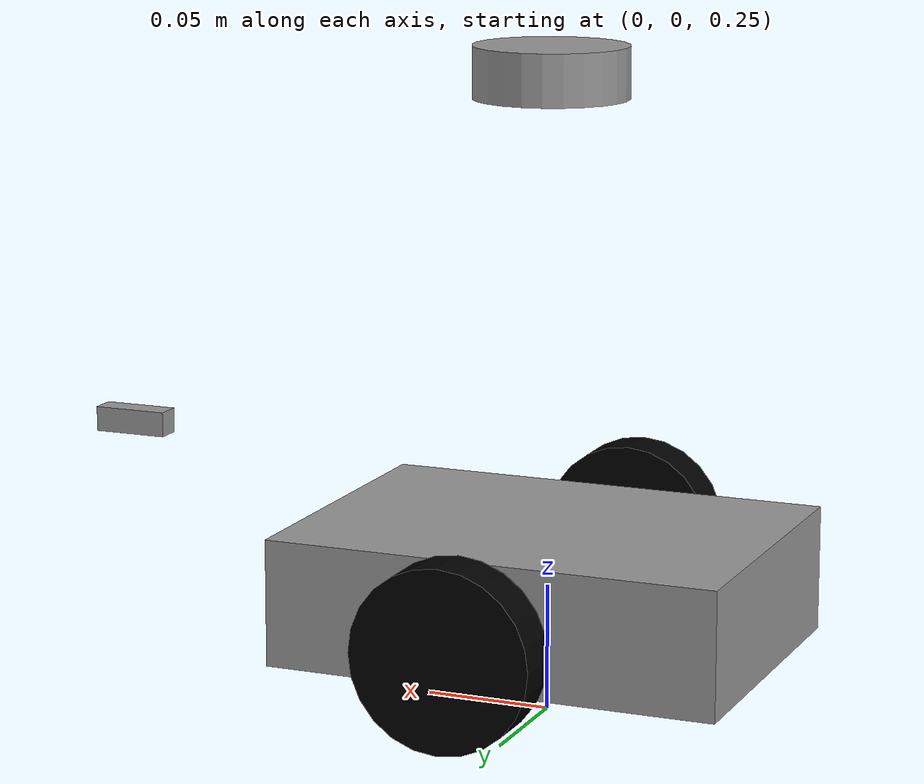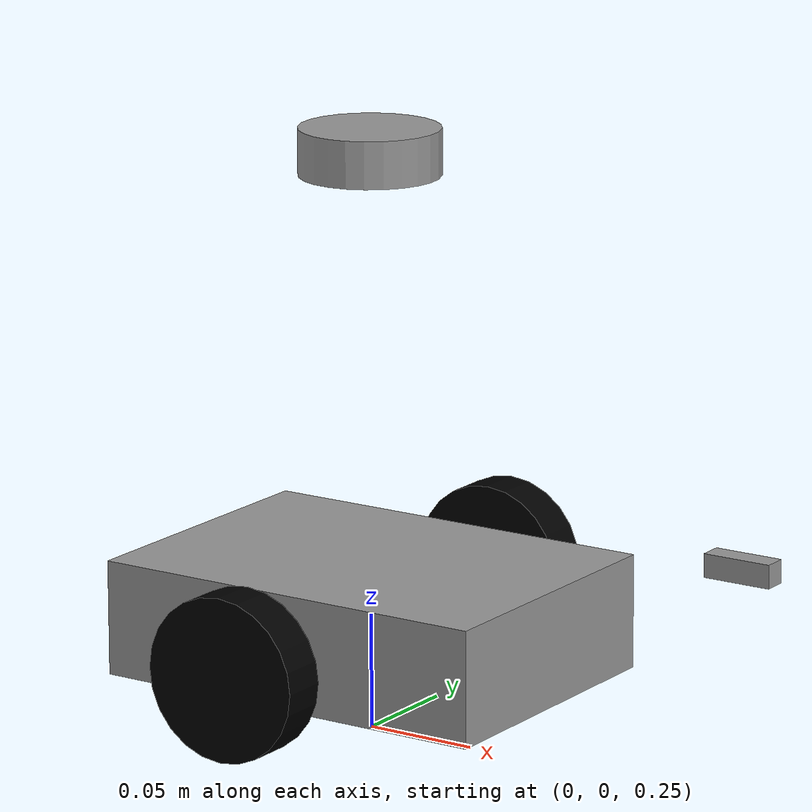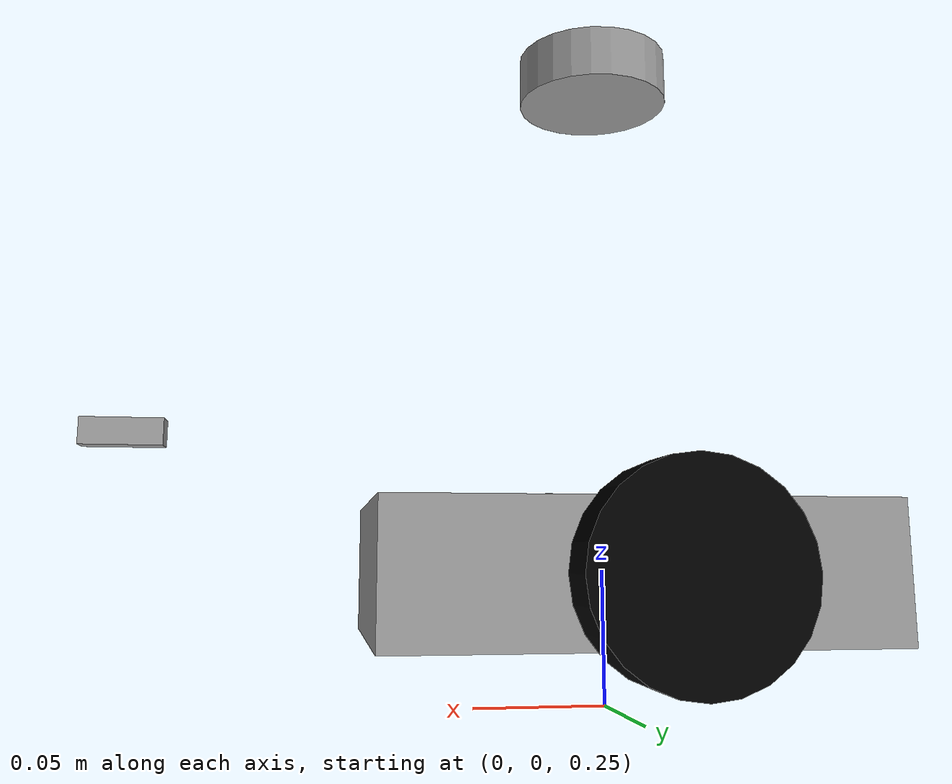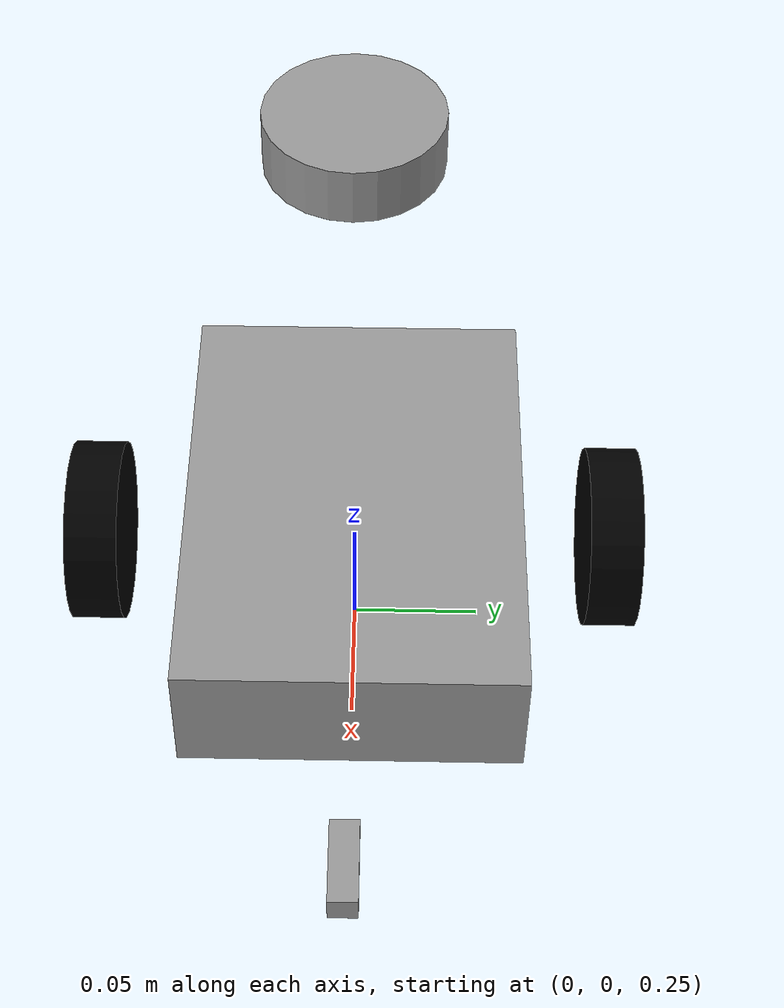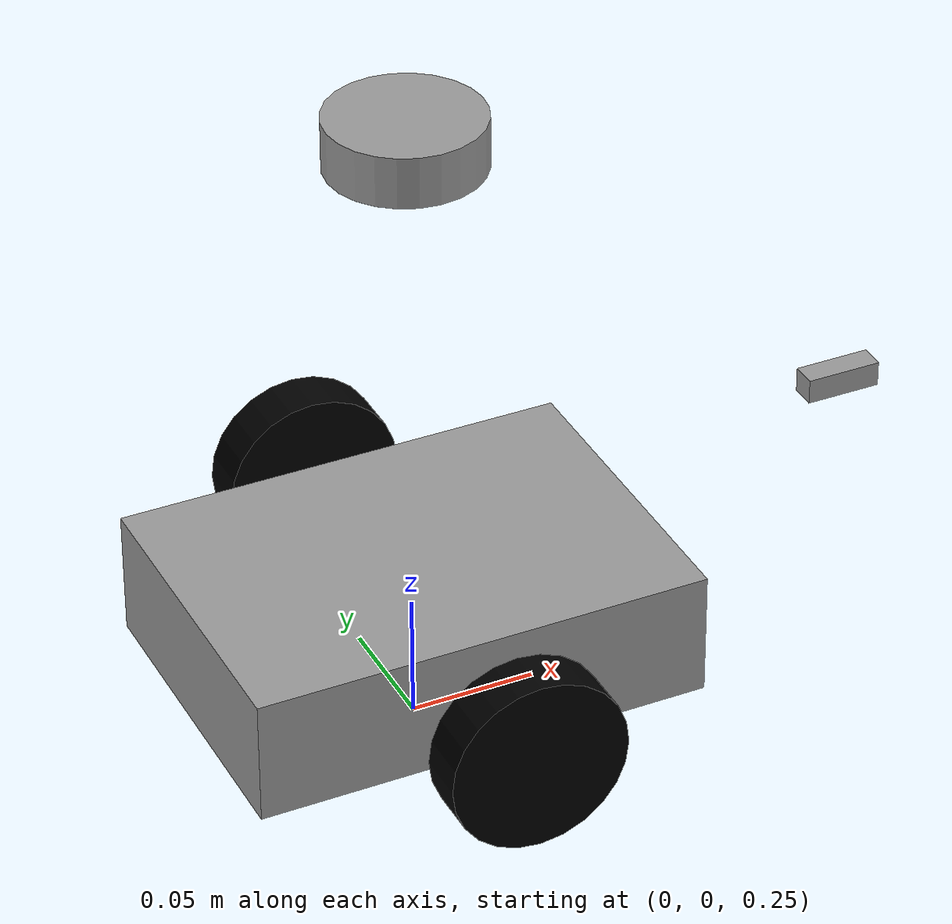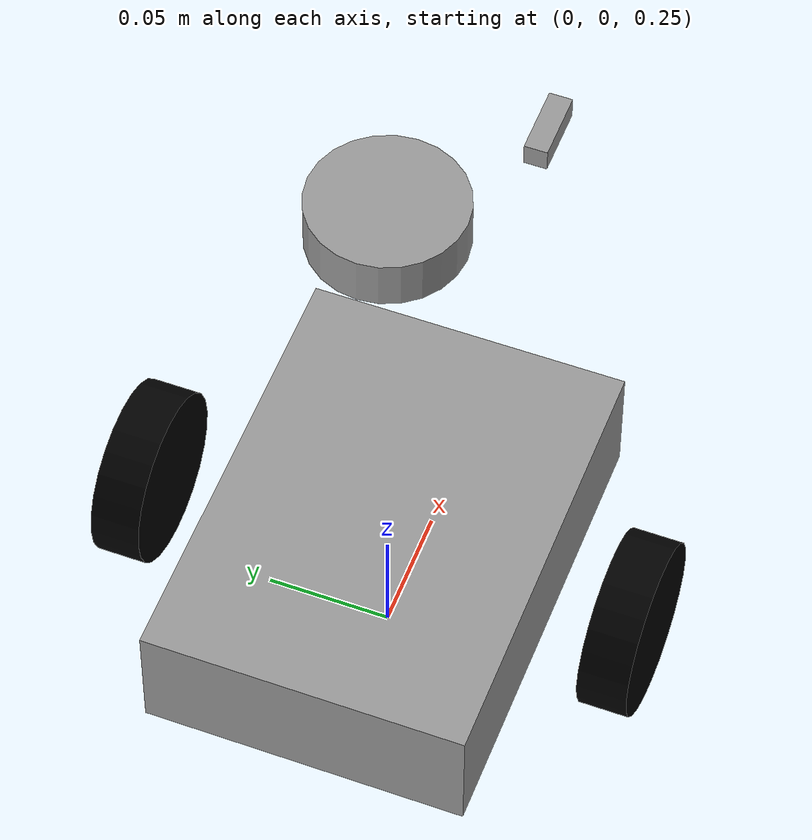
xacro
<?xml version="1.0"?>
<robot xmlns:xacro="http://ros.org/wiki/xacro" name="robot_description">

	<!-- Material -->
	<material name="white">
		<color rgba="1 1 1 1"/>
	</material>

	<material name="gray">
		<color rgba="0.6 0.6 0.6 1"/>
	</material>

	<material name="black">
		<color rgba="0 0 0 1"/>
	</material>

	<!-- Base link -->
	<link name="base_link">
		<visual>
			<geometry>
			<box size="0.18 0.13 0.05"/>
			</geometry>
			<material name="gray"/>
		</visual>
		<collision>
			<geometry>
			<box size="0.18 0.13 0.05"/>
			</geometry>
		</collision>
		<inertial>
			<mass value="1.0"/>
			<inertia ixx="0.01" ixy="0.0" ixz="0.0" iyy="0.01" iyz="0.0" izz="0.01"/>
		</inertial>
	</link>

  <!-- Base footprint for SLAM -->
	<link name="base_footprint" />

	<joint name="base_footprint_to_base_link" type="fixed">
		<parent link="base_footprint"/>
		<child link="base_link"/>
		<origin xyz="0 0 0.3" rpy="0 0 0"/>
	</joint>

  <!-- Wheels -->
	<link name="wheel_left">
		<visual>
			<geometry>
			<cylinder radius="0.035" length="0.02"/>
			</geometry>
			<origin xyz="0 0 0" rpy="1.5708 0 0"/>
			<material name="black"/>
		</visual>
	</link>

	<link name="wheel_right">
		<visual>
			<geometry>
			<cylinder radius="0.035" length="0.02"/>
			</geometry>
			<origin xyz="0 0 0" rpy="1.5708 0 0"/>
			<material name="black"/>
		</visual>
	</link>

	<!-- Joints for wheels -->
	<joint name="left_wheel_joint" type="continuous">
		<parent link="base_link"/>
		<child link="wheel_left"/>
		<origin xyz="0 -0.10 0" rpy="0 0 0"/>
		<axis xyz="0 1 0"/>
	</joint>

	<joint name="right_wheel_joint" type="continuous">
		<parent link="base_link"/>
		<child link="wheel_right"/>
		<origin xyz="0 0.10 0" rpy="0 0 0"/>
		<axis xyz="0 1 0"/>
	</joint>

	<!-- LIDAR -->
	<link name="laser">
		<visual>
			<geometry>
			<cylinder radius="0.03" length="0.02"/>
			</geometry>
			<origin xyz="0.06 0 0.10" rpy="0 0 0"/>
			<material name="gray"/>
		</visual>
	</link>

	<joint name="laser_joint" type="fixed">
		<parent link="base_link"/>
		<child link="laser"/>
		<origin xyz="0.06 0 0.10" rpy="0 0 3.1416"/>   <!-- obrót o pi=180 stopni -->
	</joint>

	<!-- Ultrasonic sensor -->
	<link name="ultrasonic_link">
		<visual>
			<geometry>
			<box size="0.03 0.01 0.01"/>
			</geometry>
			<origin xyz="0.09 0 0.025" rpy="0 0 0"/>
			<material name="gray"/>
		</visual>
	</link>

	<joint name="ultrasonic_joint" type="fixed">
		<parent link="base_link"/>
		<child link="ultrasonic_link"/>
		<origin xyz="0.09 0 0.025" rpy="0 0 0"/>
	</joint>

</robot>
